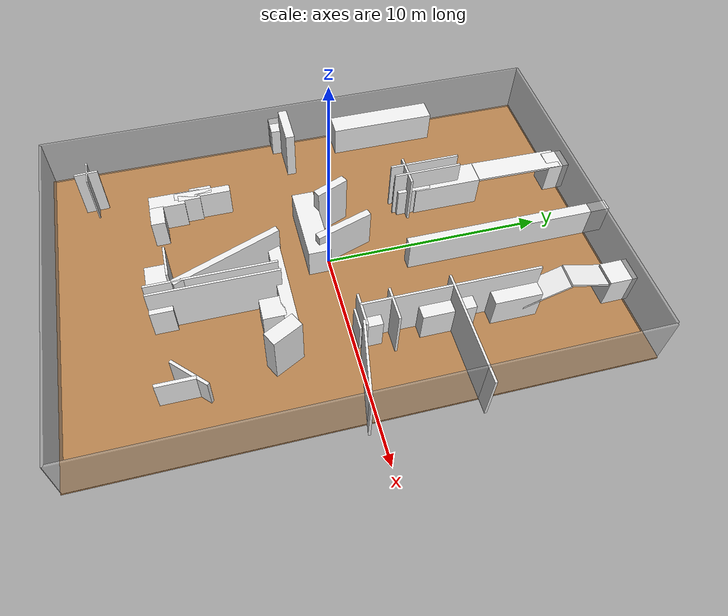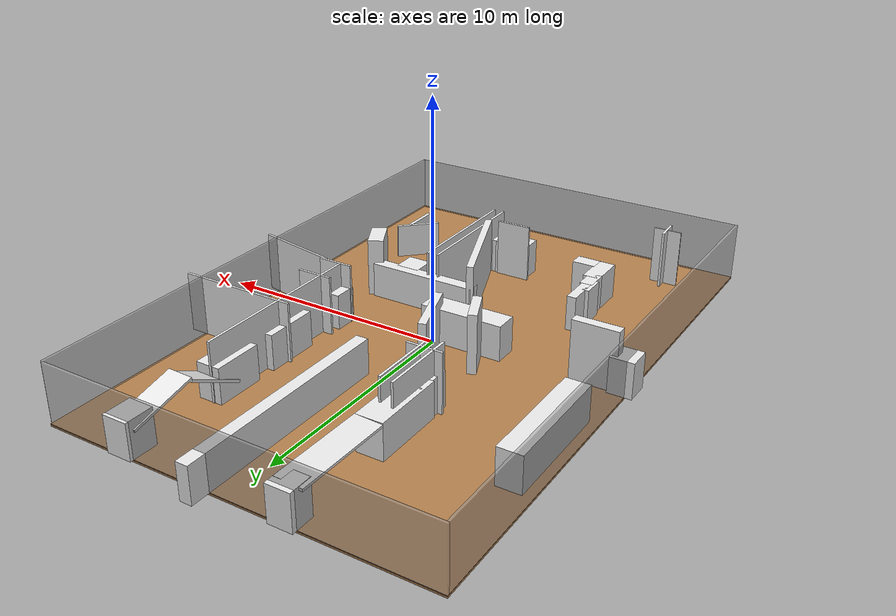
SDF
<sdf version="1.7">
 <world name="default">
  <light name="sun" type="directional">
   <pose>0 0 10 0 -0 0</pose>
   <diffuse>0.8 0.8 0.8 1</diffuse>
   <specular>0.2 0.2 0.2 1</specular>
   <attenuation>
    <range>1000</range>
    <constant>0.9</constant>
    <linear>0.01</linear>
    <quadratic>0.001</quadratic>
   </attenuation>
   <direction>-0.5 0.1 -0.9</direction>
   <spot><inner_angle>0</inner_angle><outer_angle>0</outer_angle><falloff>0</falloff></spot>
  </light>
  <physics name="default_physics" default="0" type="ode">
   <real_time_update_rate>1000</real_time_update_rate>
   <max_step_size>0.001</max_step_size>
   <real_time_factor>1</real_time_factor>
   <ode>
    <solver>
     <type>quick</type>
     <iters>150</iters>
     <precon_iters>0</precon_iters>
     <sor>1.4</sor>
     <use_dynamic_moi_rescaling>1</use_dynamic_moi_rescaling>
    </solver>
    <constraints>
     <cfm>1e-05</cfm>
     <erp>0.2</erp>
     <contact_max_correcting_vel>2000</contact_max_correcting_vel>
     <contact_surface_layer>0.01</contact_surface_layer>
    </constraints>
   </ode>
  </physics>
  <model name="box_1">
   <pose>0.05 -12.05 1.25 0 -0 0</pose>
   <static>1</static>
   <link name="link">
    <collision name="collision"><geometry><box><size>16.1 0.1 2.5</size></box></geometry></collision>
    <visual name="visual">
     <geometry><box><size>16.1 0.1 2.5</size></box></geometry>
     <material>
      <script><name>Gazebo/GreyTransparent</name><uri>file://media/materials/scripts/gazebo.material</uri></script>
     </material>
    </visual>
   </link>
  </model>
  <model name="box_2">
   <pose>8.06174 -0.026302 1.25 0 -0 0</pose>
   <static>1</static>
   <link name="link">
    <collision name="collision"><geometry><box><size>0.1 24.1 2.5</size></box></geometry></collision>
    <visual name="visual">
     <geometry><box><size>0.1 24.1 2.5</size></box></geometry>
     <material>
      <script><name>Gazebo/GreyTransparent</name><uri>file://media/materials/scripts/gazebo.material</uri></script>
     </material>
    </visual>
   </link>
  </model>
  <model name="box_3">
   <pose>-0.05 12.05 1.25 0 -0 0</pose>
   <static>1</static>
   <link name="link">
    <collision name="collision"><geometry><box><size>16.1 0.1 2.5</size></box></geometry></collision>
    <visual name="visual">
     <geometry><box><size>16.1 0.1 2.5</size></box></geometry>
     <material>
      <script><name>Gazebo/GreyTransparent</name><uri>file://media/materials/scripts/gazebo.material</uri></script>
     </material>
    </visual>
   </link>
  </model>
  <model name="box_4">
   <pose>-8.05 -0.05 1.25 0 -0 0</pose>
   <static>1</static>
   <link name="link">
    <collision name="collision"><geometry><box><size>0.1 24.1 2.5</size></box></geometry></collision>
    <visual name="visual">
     <geometry><box><size>0.1 24.1 2.5</size></box></geometry>
     <material>
      <script><name>Gazebo/GreyTransparent</name><uri>file://media/materials/scripts/gazebo.material</uri></script>
     </material>
    </visual>
   </link>
  </model>
  <model name="box_5">
   <pose>0.008855 -0.029843 -0.05 0 -0 0</pose>
   <static>1</static>
   <link name="link">
    <collision name="collision"><geometry><box><size>16.2 24.2 0.1</size></box></geometry></collision>
    <visual name="visual">
     <geometry><box><size>16.2 24.2 0.1</size></box></geometry>
     <material>
      <script><name>Gazebo/WoodFloor</name><uri>file://media/materials/scripts/gazebo.material</uri></script>
     </material>
    </visual>
   </link>
  </model>
  <gravity>0 0 -9.8066</gravity>
  <magnetic_field>6e-06 2.3e-05 -4.2e-05</magnetic_field>
  <atmosphere type="adiabatic"/>
  <scene><ambient>0.4 0.4 0.4 1</ambient><background>0.7 0.7 0.7 1</background><shadows>1</shadows></scene>
  <spherical_coordinates>
   <surface_model>EARTH_WGS84</surface_model>
   <latitude_deg>0</latitude_deg>
   <longitude_deg>0</longitude_deg>
   <elevation>0</elevation>
   <heading_deg>0</heading_deg>
  </spherical_coordinates>
  <model name="box_8_clone">
   <pose>6.77562 -0.136237 1.25 0 0 -0.191358</pose>
   <static>1</static>
   <link name="link">
    <collision name="collision"><geometry><box><size>3.67087 0.1 2.5</size></box></geometry></collision>
    <visual name="visual">
     <geometry><box><size>3.67087 0.1 2.5</size></box></geometry>
     <material>
      <script><name>Gazebo/White</name><uri>file://media/materials/scripts/gazebo.material</uri></script>
     </material>
    </visual>
   </link>
  </model>
  <model name="box_9_clone_clone_0">
   <pose>-3.23998 -7.20397 0.75 0 -0 0</pose>
   <static>1</static>
   <link name="link">
    <collision name="collision"><geometry><box><size>1 0.636001 1.5</size></box></geometry></collision>
    <visual name="visual">
     <geometry><box><size>1 0.636001 1.5</size></box></geometry>
     <material>
      <script><name>Gazebo/White</name><uri>file://media/materials/scripts/gazebo.material</uri></script>
     </material>
    </visual>
   </link>
  </model>
  <model name="box_9_clone_clone_1">
   <pose>0.352261 -7.55684 0.75 0 -0 0</pose>
   <static>1</static>
   <link name="link">
    <collision name="collision"><geometry><box><size>1.50562 1 1.5</size></box></geometry></collision>
    <visual name="visual">
     <geometry><box><size>1.50562 1 1.5</size></box></geometry>
     <material>
      <script><name>Gazebo/White</name><uri>file://media/materials/scripts/gazebo.material</uri></script>
     </material>
    </visual>
   </link>
  </model>
  <model name="box_9_clone_clone_2">
   <pose>-4.05338 -6.69897 0.75 0 -0 0</pose>
   <static>1</static>
   <link name="link">
    <collision name="collision"><geometry><box><size>0.728074 1.61647 1.5</size></box></geometry></collision>
    <visual name="visual">
     <geometry><box><size>0.728074 1.61647 1.5</size></box></geometry>
     <material>
      <script><name>Gazebo/White</name><uri>file://media/materials/scripts/gazebo.material</uri></script>
     </material>
    </visual>
   </link>
  </model>
  <model name="box_9_clone_clone_3">
   <pose>5.3452 -7.37825 0.75 0 -0 0</pose>
   <static>1</static>
   <link name="link">
    <collision name="collision"><geometry><box><size>0.152612 1.66543 1.5</size></box></geometry></collision>
    <visual name="visual">
     <geometry><box><size>0.152612 1.66543 1.5</size></box></geometry>
     <material>
      <script><name>Gazebo/White</name><uri>file://media/materials/scripts/gazebo.material</uri></script>
     </material>
    </visual>
   </link>
  </model>
  <model name="box_8_clone_clone_13_clone_clone_clone_clone_0">
   <pose>-0.400143 0.774458 0.706232 0 0 -1.25291</pose>
   <static>1</static>
   <link name="link">
    <collision name="collision"><geometry><box><size>2.69735 0.325829 2.5</size></box></geometry></collision>
    <visual name="visual">
     <geometry><box><size>2.69735 0.325829 2.5</size></box></geometry>
     <material>
      <script><name>Gazebo/White</name><uri>file://media/materials/scripts/gazebo.material</uri></script>
     </material>
    </visual>
   </link>
  </model>
  <model name="box_8_clone_clone_11_clone">
   <pose>0.508779 -4.53679 1.25 0 0 -2.77666</pose>
   <static>1</static>
   <link name="link">
    <collision name="collision"><geometry><box><size>0.290754 5.04986 2.5</size></box></geometry></collision>
    <visual name="visual">
     <geometry><box><size>0.290754 5.04986 2.5</size></box></geometry>
     <material>
      <script><name>Gazebo/White</name><uri>file://media/materials/scripts/gazebo.material</uri></script>
     </material>
    </visual>
   </link>
  </model>
  <model name="box_8_clone_clone_4_clone_2">
   <pose>-2.268 0.634019 1.25 0 -0 1.97551</pose>
   <static>1</static>
   <link name="link">
    <collision name="collision"><geometry><box><size>1.59084 0.370167 2.5</size></box></geometry></collision>
    <visual name="visual">
     <geometry><box><size>1.59084 0.370167 2.5</size></box></geometry>
     <material>
      <script><name>Gazebo/White</name><uri>file://media/materials/scripts/gazebo.material</uri></script>
     </material>
    </visual>
   </link>
  </model>
  <model name="box_9_clone_clone_7_clone">
   <pose>-7.20708 4.47733 0.75 0 -0 0</pose>
   <static>1</static>
   <link name="link">
    <collision name="collision"><geometry><box><size>1 4.97616 1.5</size></box></geometry></collision>
    <visual name="visual">
     <geometry><box><size>1 4.97616 1.5</size></box></geometry>
     <material>
      <script><name>Gazebo/White</name><uri>file://media/materials/scripts/gazebo.material</uri></script>
     </material>
    </visual>
   </link>
  </model>
  <model name="box_9_clone_clone_7_clone_clone">
   <pose>-7.89766 -0.627489 0.75 0 -0 0</pose>
   <static>1</static>
   <link name="link">
    <collision name="collision"><geometry><box><size>1 1 1.5</size></box></geometry></collision>
    <visual name="visual">
     <geometry><box><size>1 1 1.5</size></box></geometry>
     <material>
      <script><name>Gazebo/White</name><uri>file://media/materials/scripts/gazebo.material</uri></script>
     </material>
    </visual>
   </link>
  </model>
  <model name="box_9_clone_clone_7_clone_clone_3">
   <pose>-4.17789 -5.04795 0.75 0 -0 0</pose>
   <static>1</static>
   <link name="link">
    <collision name="collision"><geometry><box><size>0.396462 2.57973 1.5</size></box></geometry></collision>
    <visual name="visual">
     <geometry><box><size>0.396462 2.57973 1.5</size></box></geometry>
     <material>
      <script><name>Gazebo/White</name><uri>file://media/materials/scripts/gazebo.material</uri></script>
     </material>
    </visual>
   </link>
  </model>
  <model name="box_9_clone_clone_7_clone_clone_4">
   <pose>-4.3251 -5.10984 0.75 0 -0 0</pose>
   <static>1</static>
   <link name="link">
    <collision name="collision"><geometry><box><size>0.426828 1 1.5</size></box></geometry></collision>
    <visual name="visual">
     <geometry><box><size>0.426828 1 1.5</size></box></geometry>
     <material>
      <script><name>Gazebo/White</name><uri>file://media/materials/scripts/gazebo.material</uri></script>
     </material>
    </visual>
   </link>
  </model>
  <model name="box_9_clone_clone_7_clone_clone_5">
   <pose>-4.14775 -5.66293 0.75 0 -0 0</pose>
   <static>1</static>
   <link name="link">
    <collision name="collision"><geometry><box><size>0.542495 1 1.5</size></box></geometry></collision>
    <visual name="visual">
     <geometry><box><size>0.542495 1 1.5</size></box></geometry>
     <material>
      <script><name>Gazebo/White</name><uri>file://media/materials/scripts/gazebo.material</uri></script>
     </material>
    </visual>
   </link>
  </model>
  <model name="box_9_clone_clone_5_clone_2_clone_0">
   <pose>4.39452 6.95643 0.75 0 -0 0</pose>
   <static>1</static>
   <link name="link">
    <collision name="collision"><geometry><box><size>1.02973 2.0893 1.5</size></box></geometry></collision>
    <visual name="visual">
     <geometry><box><size>1.02973 2.0893 1.5</size></box></geometry>
     <material>
      <script><name>Gazebo/White</name><uri>file://media/materials/scripts/gazebo.material</uri></script>
     </material>
    </visual>
   </link>
  </model>
  <model name="box_9_clone_clone_5_clone_2_clone_0_clone_0">
   <pose>5.07142 -6.80657 0.75 0 -0 0.77259</pose>
   <static>1</static>
   <link name="link">
    <collision name="collision"><geometry><box><size>1.90123 0.137879 1.5</size></box></geometry></collision>
    <visual name="visual">
     <geometry><box><size>1.90123 0.137879 1.5</size></box></geometry>
     <material>
      <script><name>Gazebo/White</name><uri>file://media/materials/scripts/gazebo.material</uri></script>
     </material>
    </visual>
   </link>
  </model>
  <model name="box_6_clone_clone_4_clone">
   <pose>4.47434 10.5847 1.40455 0 -1.3182 1.53996</pose>
   <static>1</static>
   <link name="link">
    <collision name="collision"><geometry><box><size>0.1 1.08009 2.76392</size></box></geometry></collision>
    <visual name="visual">
     <geometry><box><size>0.1 1.08009 2.76392</size></box></geometry>
     <material>
      <script><name>Gazebo/White</name><uri>file://media/materials/scripts/gazebo.material</uri></script>
     </material>
    </visual>
   </link>
  </model>
  <model name="box_9_clone_clone_7_clone_clone_clone">
   <pose>-1.2304 -0.521784 0.75 0 -0 0</pose>
   <static>1</static>
   <link name="link">
    <collision name="collision"><geometry><box><size>3.55314 1 1.5</size></box></geometry></collision>
    <visual name="visual">
     <geometry><box><size>3.55314 1 1.5</size></box></geometry>
     <material>
      <script><name>Gazebo/White</name><uri>file://media/materials/scripts/gazebo.material</uri></script>
     </material>
    </visual>
   </link>
  </model>
  <model name="box_8_clone_clone_3_clone">
   <pose>6.25131 4.20674 1.25 0 -0 0</pose>
   <static>1</static>
   <link name="link">
    <collision name="collision"><geometry><box><size>5.04273 0.1 2.5</size></box></geometry></collision>
    <visual name="visual">
     <geometry><box><size>5.04273 0.1 2.5</size></box></geometry>
     <material>
      <script><name>Gazebo/White</name><uri>file://media/materials/scripts/gazebo.material</uri></script>
     </material>
    </visual>
   </link>
  </model>
  <model name="box_9_clone_clone_7_clone_0">
   <pose>0.952701 8.1379 0.75 0 -0 0</pose>
   <static>1</static>
   <link name="link">
    <collision name="collision"><geometry><box><size>0.511994 9.49899 1.5</size></box></geometry></collision>
    <visual name="visual">
     <geometry><box><size>0.511994 9.49899 1.5</size></box></geometry>
     <material>
      <script><name>Gazebo/White</name><uri>file://media/materials/scripts/gazebo.material</uri></script>
     </material>
    </visual>
   </link>
  </model>
  <model name="box_9_clone_clone_9_clone">
   <pose>-2.30467 11.7929 0.75 0 -0 0</pose>
   <static>1</static>
   <link name="link">
    <collision name="collision"><geometry><box><size>1 1 1.5</size></box></geometry></collision>
    <visual name="visual">
     <geometry><box><size>1 1 1.5</size></box></geometry>
     <material>
      <script><name>Gazebo/White</name><uri>file://media/materials/scripts/gazebo.material</uri></script>
     </material>
    </visual>
   </link>
  </model>
  <model name="box_6_clone_clone_3_clone_clone_clone">
   <pose>-2.74377 5.24994 1.25 0 -0 0</pose>
   <static>1</static>
   <link name="link">
    <collision name="collision"><geometry><box><size>0.1 3.23033 2.5</size></box></geometry></collision>
    <visual name="visual">
     <geometry><box><size>0.1 3.23033 2.5</size></box></geometry>
     <material>
      <script><name>Gazebo/White</name><uri>file://media/materials/scripts/gazebo.material</uri></script>
     </material>
    </visual>
   </link>
  </model>
  <model name="box_6_clone_clone_3_clone_clone_clone_clone">
   <pose>4.22525 4.13827 1.25 0 -0 0</pose>
   <static>1</static>
   <link name="link">
    <collision name="collision"><geometry><box><size>0.1 7.79388 2.5</size></box></geometry></collision>
    <visual name="visual">
     <geometry><box><size>0.1 7.79388 2.5</size></box></geometry>
     <material>
      <script><name>Gazebo/White</name><uri>file://media/materials/scripts/gazebo.material</uri></script>
     </material>
    </visual>
   </link>
  </model>
  <model name="box_6_clone_clone_3_clone_clone_clone_clone_0">
   <pose>1.77771 -5.26178 1.25 0 -0 0</pose>
   <static>1</static>
   <link name="link">
    <collision name="collision"><geometry><box><size>0.1 5.60332 2.5</size></box></geometry></collision>
    <visual name="visual">
     <geometry><box><size>0.1 5.60332 2.5</size></box></geometry>
     <material>
      <script><name>Gazebo/White</name><uri>file://media/materials/scripts/gazebo.material</uri></script>
     </material>
    </visual>
   </link>
  </model>
  <model name="box_6_clone_clone_3_clone_clone_clone_clone_0_clone">
   <pose>1.33283 -5.29976 1.25 0 -0 0</pose>
   <static>1</static>
   <link name="link">
    <collision name="collision"><geometry><box><size>0.1 5.60332 2.5</size></box></geometry></collision>
    <visual name="visual">
     <geometry><box><size>0.1 5.60332 2.5</size></box></geometry>
     <material>
      <script><name>Gazebo/White</name><uri>file://media/materials/scripts/gazebo.material</uri></script>
     </material>
    </visual>
   </link>
  </model>
  <model name="box_9_clone_clone_5_clone_2_clone_0_clone_clone">
   <pose>1.9475 -2.43744 0.75 0 -0 0</pose>
   <static>1</static>
   <link name="link">
    <collision name="collision"><geometry><box><size>4.74882 0.537178 1.5</size></box></geometry></collision>
    <visual name="visual">
     <geometry><box><size>4.74882 0.537178 1.5</size></box></geometry>
     <material>
      <script><name>Gazebo/White</name><uri>file://media/materials/scripts/gazebo.material</uri></script>
     </material>
    </visual>
   </link>
  </model>
  <model name="box_8_clone_clone">
   <pose>4.47101 0.276191 1.25 0 -0 0</pose>
   <static>1</static>
   <link name="link">
    <collision name="collision"><geometry><box><size>1.5 0.1 2.5</size></box></geometry></collision>
    <visual name="visual">
     <geometry><box><size>1.5 0.1 2.5</size></box></geometry>
     <material>
      <script><name>Gazebo/White</name><uri>file://media/materials/scripts/gazebo.material</uri></script>
     </material>
    </visual>
   </link>
  </model>
  <model name="box_9_clone_clone_7_clone_clone_0">
   <pose>-2.43804 4.59154 0.75 0 -0 0</pose>
   <static>1</static>
   <link name="link">
    <collision name="collision"><geometry><box><size>1 1.54675 1.5</size></box></geometry></collision>
    <visual name="visual">
     <geometry><box><size>1 1.54675 1.5</size></box></geometry>
     <material>
      <script><name>Gazebo/White</name><uri>file://media/materials/scripts/gazebo.material</uri></script>
     </material>
    </visual>
   </link>
  </model>
  <model name="box_9_clone_clone_5_clone_2_clone_0_clone_0_clone">
   <pose>1.56966 -7.55907 0.75 0 -0 0</pose>
   <static>1</static>
   <link name="link">
    <collision name="collision"><geometry><box><size>1 1 1.5</size></box></geometry></collision>
    <visual name="visual">
     <geometry><box><size>1 1 1.5</size></box></geometry>
     <material>
      <script><name>Gazebo/White</name><uri>file://media/materials/scripts/gazebo.material</uri></script>
     </material>
    </visual>
   </link>
  </model>
  <model name="box_9_clone_clone_5_clone_2_clone_clone_clone_0_clone">
   <pose>4.3636 3.94247 0.75 0 -0 0</pose>
   <static>1</static>
   <link name="link">
    <collision name="collision"><geometry><box><size>0.996807 2.34121 1.5</size></box></geometry></collision>
    <visual name="visual">
     <geometry><box><size>0.996807 2.34121 1.5</size></box></geometry>
     <material>
      <script><name>Gazebo/White</name><uri>file://media/materials/scripts/gazebo.material</uri></script>
     </material>
    </visual>
   </link>
  </model>
  <model name="box_9_clone_clone_5_clone_2_clone_clone_clone_0_clone_clone">
   <pose>4.24919 0.631939 0.75 0 -0 0</pose>
   <static>1</static>
   <link name="link">
    <collision name="collision"><geometry><box><size>1 1 1.5</size></box></geometry></collision>
    <visual name="visual">
     <geometry><box><size>1 1 1.5</size></box></geometry>
     <material>
      <script><name>Gazebo/White</name><uri>file://media/materials/scripts/gazebo.material</uri></script>
     </material>
    </visual>
   </link>
  </model>
  <model name="box_6_clone_clone_3_clone_clone_clone_clone_1">
   <pose>-2.16782 5.21001 1.25 0 -0 0.001144</pose>
   <static>1</static>
   <link name="link">
    <collision name="collision"><geometry><box><size>0.1 3.12165 2.5</size></box></geometry></collision>
    <visual name="visual">
     <geometry><box><size>0.1 3.12165 2.5</size></box></geometry>
     <material>
      <script><name>Gazebo/White</name><uri>file://media/materials/scripts/gazebo.material</uri></script>
     </material>
    </visual>
   </link>
  </model>
  <model name="box_9_clone_clone_8_clone_0_clone">
   <pose>-2.43485 6.21978 0.75 0 -0 0</pose>
   <static>1</static>
   <link name="link">
    <collision name="collision"><geometry><box><size>1.12201 3.13013 1.5</size></box></geometry></collision>
    <visual name="visual">
     <geometry><box><size>1.12201 3.13013 1.5</size></box></geometry>
     <material>
      <script><name>Gazebo/White</name><uri>file://media/materials/scripts/gazebo.material</uri></script>
     </material>
    </visual>
   </link>
  </model>
  <model name="box_8_clone_clone_3_clone_clone_clone">
   <pose>-6.73637 -0.479811 1.25 0 -0 0</pose>
   <static>1</static>
   <link name="link">
    <collision name="collision"><geometry><box><size>1.9027 0.415191 2.5</size></box></geometry></collision>
    <visual name="visual">
     <geometry><box><size>1.9027 0.415191 2.5</size></box></geometry>
     <material>
      <script><name>Gazebo/White</name><uri>file://media/materials/scripts/gazebo.material</uri></script>
     </material>
    </visual>
   </link>
  </model>
  <audio><device>default</device></audio>
  <model name="box_6_clone_clone_4_clone_clone">
   <pose>4.38248 8.16427 1.1171 0 -1.11157 -1.60232</pose>
   <static>1</static>
   <link name="link">
    <collision name="collision"><geometry><box><size>0.1 1.10854 2.5</size></box></geometry></collision>
    <visual name="visual">
     <geometry><box><size>0.1 1.10854 2.5</size></box></geometry>
     <material>
      <script><name>Gazebo/White</name><uri>file://media/materials/scripts/gazebo.material</uri></script>
     </material>
    </visual>
   </link>
  </model>
  <model name="box_9_clone_clone_5_clone_2_clone_0_clone_0_clone_0">
   <pose>2.88033 -3.08492 0.75 0 -0 0</pose>
   <static>1</static>
   <link name="link">
    <collision name="collision"><geometry><box><size>1 1 1.5</size></box></geometry></collision>
    <visual name="visual">
     <geometry><box><size>1 1 1.5</size></box></geometry>
     <material>
      <script><name>Gazebo/White</name><uri>file://media/materials/scripts/gazebo.material</uri></script>
     </material>
    </visual>
   </link>
  </model>
  <model name="box_8_clone_clone_11_clone_clone">
   <pose>4.63895 -2.95641 1.25 0 0 -1.09561</pose>
   <static>1</static>
   <link name="link">
    <collision name="collision"><geometry><box><size>1.42492 0.661899 2.5</size></box></geometry></collision>
    <visual name="visual">
     <geometry><box><size>1.42492 0.661899 2.5</size></box></geometry>
     <material>
      <script><name>Gazebo/White</name><uri>file://media/materials/scripts/gazebo.material</uri></script>
     </material>
    </visual>
   </link>
  </model>
  <model name="box_8_clone_clone_11_clone_clone_0">
   <pose>-5.67141 -10.0374 1.25 0 -0 1.62008</pose>
   <static>1</static>
   <link name="link">
    <collision name="collision"><geometry><box><size>1.06277 0.1 2.5</size></box></geometry></collision>
    <visual name="visual">
     <geometry><box><size>1.06277 0.1 2.5</size></box></geometry>
     <material>
      <script><name>Gazebo/White</name><uri>file://media/materials/scripts/gazebo.material</uri></script>
     </material>
    </visual>
   </link>
  </model>
  <model name="box_8_clone_clone_11_clone_clone_1">
   <pose>-5.71384 -9.99262 1.25 0 -0 0</pose>
   <static>1</static>
   <link name="link">
    <collision name="collision"><geometry><box><size>1.19714 0.0589998 2.5</size></box></geometry></collision>
    <visual name="visual">
     <geometry><box><size>1.19714 0.0589998 2.5</size></box></geometry>
     <material>
      <script><name>Gazebo/White</name><uri>file://media/materials/scripts/gazebo.material</uri></script>
     </material>
    </visual>
   </link>
  </model>
  <model name="box_8_clone_clone_11_clone_clone_1_clone">
   <pose>0.220749 -7.0443 1.25 0 -0 0</pose>
   <static>1</static>
   <link name="link">
    <collision name="collision"><geometry><box><size>1.5 0.1 2.5</size></box></geometry></collision>
    <visual name="visual">
     <geometry><box><size>1.5 0.1 2.5</size></box></geometry>
     <material>
      <script><name>Gazebo/White</name><uri>file://media/materials/scripts/gazebo.material</uri></script>
     </material>
    </visual>
   </link>
  </model>
  <model name="box_8_clone_clone_4_clone_2_clone">
   <pose>-2.37022 4.28765 1.25 0 -0 0</pose>
   <static>1</static>
   <link name="link">
    <collision name="collision"><geometry><box><size>1.5 0.1 2.5</size></box></geometry></collision>
    <visual name="visual">
     <geometry><box><size>1.5 0.1 2.5</size></box></geometry>
     <material>
      <script><name>Gazebo/White</name><uri>file://media/materials/scripts/gazebo.material</uri></script>
     </material>
    </visual>
   </link>
  </model>
  <model name="box_8_clone_clone_4_clone_2_clone_clone">
   <pose>4.50184 1.59903 1.25 0 -0 0</pose>
   <static>1</static>
   <link name="link">
    <collision name="collision"><geometry><box><size>1.5 0.1 2.5</size></box></geometry></collision>
    <visual name="visual">
     <geometry><box><size>1.5 0.1 2.5</size></box></geometry>
     <material>
      <script><name>Gazebo/White</name><uri>file://media/materials/scripts/gazebo.material</uri></script>
     </material>
    </visual>
   </link>
  </model>
  <model name="box_9_clone_clone_5_clone_2_clone_0_clone">
   <pose>4.57033 11.6192 0.75 0 -0 0</pose>
   <static>1</static>
   <link name="link">
    <collision name="collision"><geometry><box><size>1.0548 1.22023 1.5</size></box></geometry></collision>
    <visual name="visual">
     <geometry><box><size>1.0548 1.22023 1.5</size></box></geometry>
     <material>
      <script><name>Gazebo/White</name><uri>file://media/materials/scripts/gazebo.material</uri></script>
     </material>
    </visual>
   </link>
  </model>
  <model name="box_8_clone_clone_3_clone_clone_clone_0">
   <pose>-2.41847 9.84203 1.44047 -1.57067 -0.035681 -0.014782</pose>
   <static>1</static>
   <link name="link">
    <collision name="collision"><geometry><box><size>1.1445 0.1 4.08788</size></box></geometry></collision>
    <visual name="visual">
     <geometry><box><size>1.1445 0.1 4.08788</size></box></geometry>
     <material>
      <script><name>Gazebo/White</name><uri>file://media/materials/scripts/gazebo.material</uri></script>
     </material>
    </visual>
   </link>
  </model>
 </world>
</sdf>
